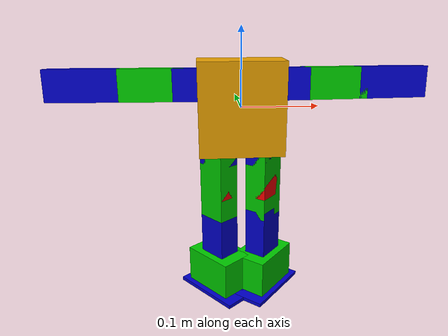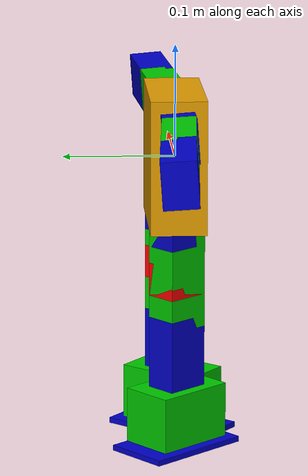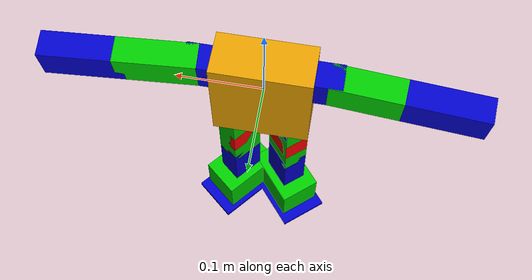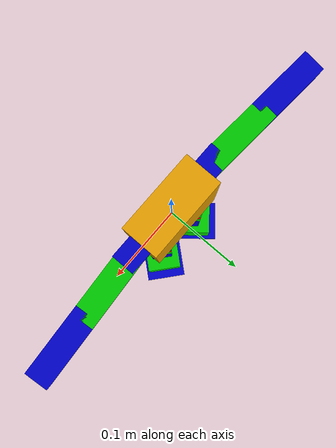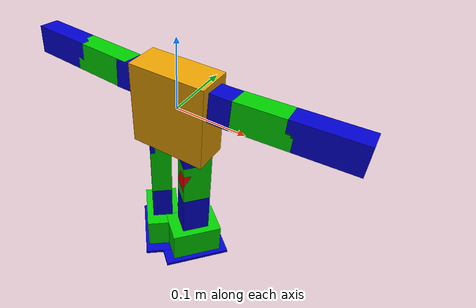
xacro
<?xml version="1.0"?>
<robot name="awesome-o" xmlns:xacro="http://www.ros.org/wiki/xacro">
<xacro:macro name="arm" params="prefix reflect base">
<link name="${prefix}_shoulder">
<visual>
<geometry>
<box size="0.03 0.04 0.03"/>
</geometry>
<origin rpy="0 0 0" xyz="0.0 0 0.00"/>
<material name="blue">
<color rgba="0 0 .8 1"/>
</material>
</visual>
</link>
<joint name="${base+1}:base_to_${prefix}_shoulder" type="revolute">
<parent link="base_link"/>
<child link="${prefix}_shoulder"/>
<origin rpy="1.5 0 0" xyz="${reflect*0.070} 0 0.03"/>
<axis xyz="${reflect} 0 0"/>
<limit effort="1000.0" lower="-3.14" upper="3.14" velocity="0.5"/>
</joint>
<link name="${prefix}_upper_arm">
    <visual>
      <geometry>
      <!--mesh filename="file:///home/local/AX12.dae" scale="0.0001 0.0001 0.0001"/-->
      <box size="0.03 0.04 0.09"/>
      </geometry>
      <material name="green">
        <color rgba="0 .8 0 1"/>
      </material>
      <origin rpy="0 0 0" xyz="0.00 0 -0.045"/>
    </visual>
</link>
  <joint name="${base+3}:${prefix}_shoulder_to_upper" type="revolute">
    <parent link="${prefix}_shoulder"/>
    <child link="${prefix}_upper_arm"/>
    <origin rpy="0 ${reflect*-1.5} 0" xyz="0.00 0 0.0"/>
    <axis xyz="0 -1 0"/>
    <limit effort="1000.0" lower="-3.14" upper="3.14" velocity="0.5"/>
  </joint>
<link name="${prefix}_forearm">
    <visual>
      <geometry>
      <!--mesh filename="file:///home/local/AX12.dae" scale="0.0001 0.0001 0.0001"/-->
      <box size="0.03 0.04 0.09"/>
      </geometry>
      <material name="blue"/>
      <origin rpy="0 0 0" xyz="0.00 0 -0.045"/>
    </visual>
</link>
  <joint name="${base+5}:${prefix}_elbow" type="revolute">
    <parent link="${prefix}_upper_arm"/>
    <child link="${prefix}_forearm"/>
    <origin rpy="0 0 0" xyz="0.00 0 -0.08"/>
    <axis xyz="0 -1 0"/>
    <limit effort="1000.0" lower="-3.14" upper="3.14" velocity="0.5"/>
  </joint>
</xacro:macro>

<xacro:macro name="leg" params="prefix reflect base">
<link name="${prefix}_hip">
	<visual>
		<geometry>
			<box size="0.03 0.04 0.03"/>
		</geometry>
		<origin rpy="0 0 0" xyz="0.0 0 0.00"/>
		<material name="blue">
		<color rgba="0 0 .8 1"/>
		</material>
	</visual>
</link>
<joint name="${base+7}:base_to_${prefix}_hip" type="revolute">
	<parent link="base_link"/>
	<child link="${prefix}_hip"/>
	<origin rpy="0 0 ${reflect*-0.70}" xyz="${reflect*0.030} 0 -0.06"/>
	<axis xyz="0 0 -1"/>
	<limit effort="1000.0" lower="-3.14" upper="3.14" velocity="0.5"/>
</joint>
<link name="${prefix}_hip_split">
    <visual>
      <geometry>
      <box size="0.03 0.04 0.03"/>
      </geometry>
      <material name="red">
			<color rgba="1 .0 .0 1"/>
			</material>
      <origin rpy="0 0 0" xyz="0.00 0 -0.045"/>
    </visual>
</link>
<joint name="${base+9}:${prefix}_hip_to_split" type="revolute">
<parent link="${prefix}_hip"/>
<child link="${prefix}_hip_split"/>
<origin rpy="0 0 0" xyz="0.00 0 0.0"/>
<axis xyz="0 1 0"/>
<limit effort="1000.0" lower="-3.14" upper="3.14" velocity="0.5"/>
</joint>
<link name="${prefix}_upper_leg">
    <visual>
      <geometry>
      <box size="0.03 0.04 0.09"/>
      </geometry>
      <material name="green"/>
      <origin rpy="0 0 0" xyz="0.00 0 -0.045"/>
    </visual>
</link>
  <joint name="${base+11}:${prefix}_hip_split_to_upper" type="revolute">
    <parent link="${prefix}_hip_split"/>
    <child link="${prefix}_upper_leg"/>
    <origin rpy="0 0 0" xyz="0.00 0 0.0"/>
    <axis xyz="${reflect*-1} 0 0"/>
    <limit effort="1000.0" lower="-3.14" upper="3.14" velocity="0.5"/>
  </joint>
<link name="${prefix}_calf">
    <visual>
      <geometry>
      <!--mesh filename="file:///home/local/AX12.dae" scale="0.0001 0.0001 0.0001"/-->
      <box size="0.03 0.04 0.09"/>
      </geometry>
      <material name="blue"/>
      <origin rpy="0 0 0" xyz="0.00 0 -0.045"/>
    </visual>
</link>
  <joint name="${base+13}:${prefix}_knee" type="revolute">
    <parent link="${prefix}_upper_leg"/>
    <child link="${prefix}_calf"/>
    <origin rpy="0 0 0" xyz="0.00 0 -0.08"/>
    <axis xyz="${reflect*1} 0 0"/>
    <limit effort="1000.0" lower="-3.14" upper="3.14" velocity="0.5"/>
  </joint>
<link name="${prefix}_foot">
    <visual>
      <geometry>
      <box size="0.05 0.075 0.05"/>
      </geometry>
      <material name="green"/>
      <origin rpy="0 0 0" xyz="0.00 0 -0.045"/>
    </visual>
</link>
  <joint name="${base+15}:${prefix}_ankle" type="revolute">
    <parent link="${prefix}_calf"/>
    <child link="${prefix}_foot"/>
    <origin rpy="0 0 0" xyz="0.00 0 -0.045"/>
    <axis xyz="${reflect} 0 0"/>
    <limit effort="1000.0" lower="-3.14" upper="3.14" velocity="0.5"/>
  </joint>
<link name="${prefix}_foot_pad">
    <visual>
      <geometry>
      <box size="0.06 0.10 0.005"/>
      </geometry>
      <material name="blue"/>
      <origin rpy="0 0 0" xyz="0.00 0 -0.045"/>
    </visual>
</link>
  <joint name="${base+17}:${prefix}_ankle_roll" type="revolute">
    <parent link="${prefix}_foot"/>
    <child link="${prefix}_foot_pad"/>
    <origin rpy="0 0 0" xyz="0.00 0 -0.03"/>
    <axis xyz="0 -1 0"/>
    <limit effort="1000.0" lower="-3.14" upper="3.14" velocity="0.5"/>
  </joint>
</xacro:macro>

<link name="base_link">
<visual>
<geometry>
<box size="0.11 0.05 0.12"/>
</geometry>
</visual>
</link>
<xacro:arm prefix="right" reflect="1" base="0"/>
<xacro:arm prefix="left" reflect="-1" base="1"/>
<xacro:leg prefix="right" reflect="1" base="0"/>
<xacro:leg prefix="left" reflect="-1" base="1"/>
</robot>
